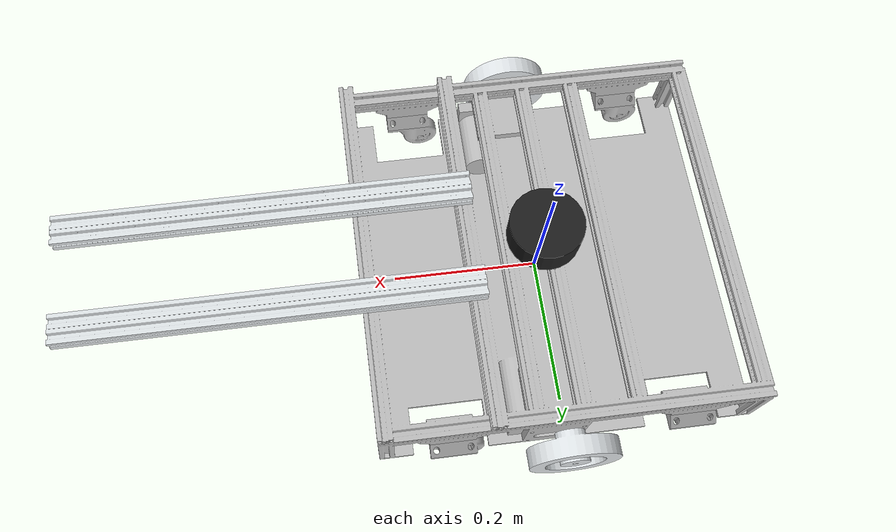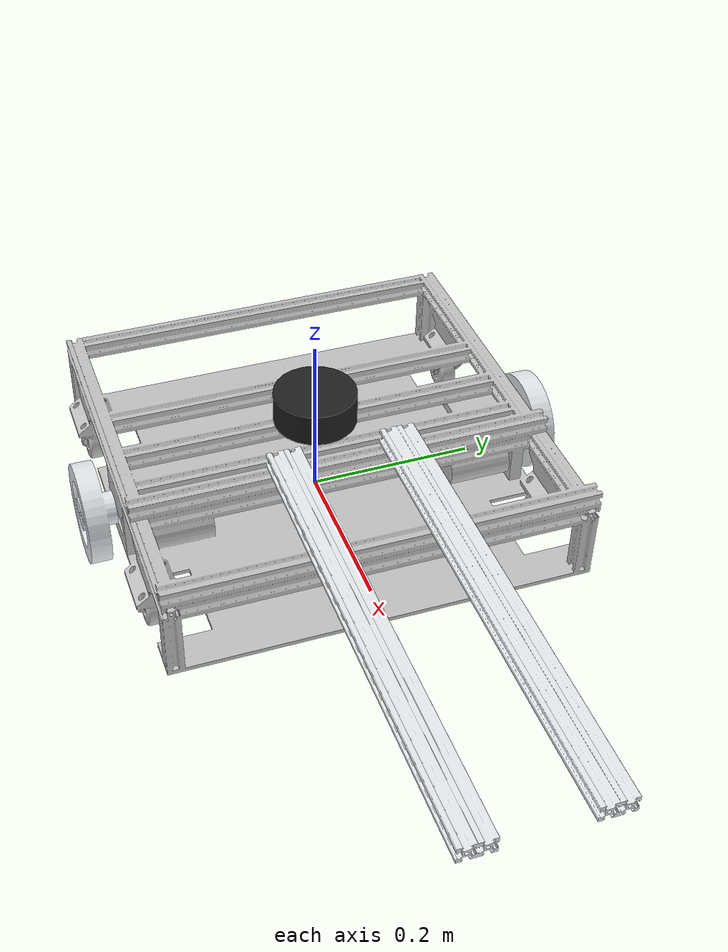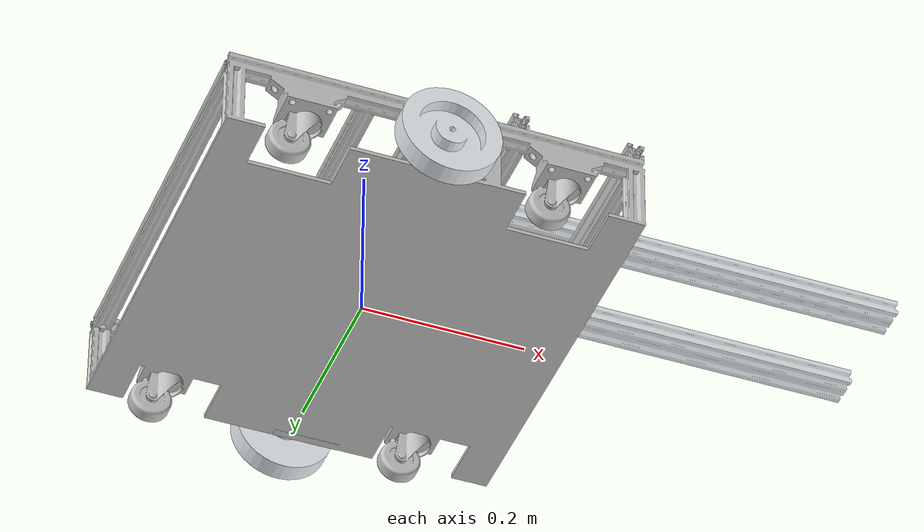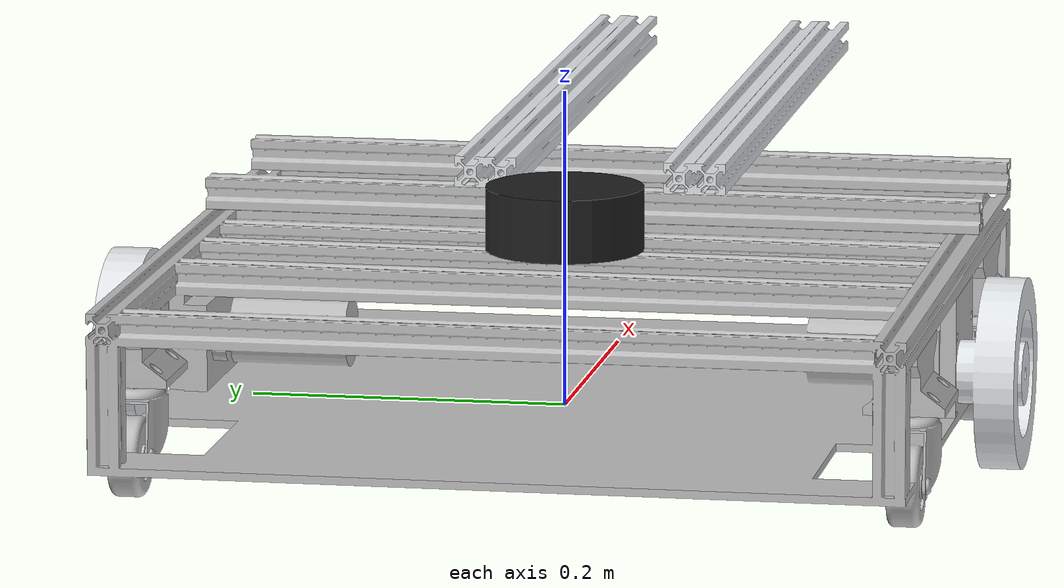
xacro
<?xml version="1.0"?>
<robot xmlns:xacro="http://www.ros.org/wiki/xacro" name="diffdrive" >

  <material name="wheel">
    <color rgba="0 1 0 0.5" /> </material>

  <link name="base_footprint_diff"></link>
  <joint name="base_link_diff_to_base_footprint_diff" type="fixed">
    <origin xyz="0 0 0" rpy="0 0 3.14159265"/>
    <parent link="base_footprint_diff"/>
    <child link="base_link_diff"/>
  </joint>

  <link name="laser_frame_diff">
    <visual>
      <geometry>
        <cylinder radius="0.05" length="0.04"/>
      </geometry>
    </visual>
    <collision>
      <geometry>
        <cylinder radius="0.05" length="0.04"/>
      </geometry>
    </collision>
      <inertial>
      <origin
        xyz="0 0 0"
        rpy="0 0 0" />
      <mass
        value="0.1" />
      <inertia
        ixx="0.01" ixy="0.0" ixz="0.0"
        iyy="0.01" iyz="0.0"
        izz="0.01"/>
    </inertial>
  </link>

  <joint name="laser_joint" type="fixed">
    <origin xyz="0 0 0.12" rpy="0 0 0"/>
    <parent link="base_link_diff"/>
    <child link="laser_frame_diff"/>
  </joint>

  <link
    name="base_link_diff">
    <inertial>
      <origin
        xyz="-0.0244064139228468 -6.45065062421235E-07 0.0569804687199345"
        rpy="0 0 0" />
      <mass
        value="6.66720366185749" />
      <inertia
        ixx="0.01" ixy="0.0" ixz="0.0"
        iyy="0.01" iyz="0.0"
        izz="0.01"/>
    </inertial>
    <visual>
      <origin
        xyz="0 0 0"
        rpy="0 0 0" />
      <geometry>
        <mesh
          filename="file:///$(find my_robot_description)/meshes/diffdrive_meshes/base_link.STL" />
      </geometry>
      <material
        name="">
        <color
          rgba="0.752941176470588 0.752941176470588 0.752941176470588 1" />
      </material>
    </visual>
    <collision>
      <origin
        xyz="0 0 0"
        rpy="0 0 0" />
      <geometry>
        <mesh
          filename="file:///$(find my_robot_description)/meshes/diffdrive_meshes/base_link.STL" />
      </geometry>
     <surface>
        <poissons_ratio>0.347</poissons_ratio>
        <elastic_modulus>8.8e+09</elastic_modulus>
        <ode>
          <soft_cfm>2e+20</soft_cfm>
          <soft_erp>2e+40</soft_erp>
          <kp>1000</kp>
          <kd>1</kd>
          <max_vel>0.01</max_vel>
          <min_depth>1.0</min_depth>
        </ode>
      </surface>
    </collision>
  </link>
  <link
    name="Wheel_left">
    <inertial>
      <origin
        xyz="1.11022302462516E-16 0.0257257525083613 -8.32667268468867E-17"
        rpy="0 0 0" />
      <mass
        value="4.40470068076377" />
      <inertia
        ixx="0.000245137261047142"
        ixy="5.12745004835681E-20"
        ixz="0"
        iyy="0.000452624182450971"
        iyz="-5.57841424911612E-20"
        izz="0.000245137261047142" />
    </inertial>
    <visual>
      <origin
        xyz="0 0 0"
        rpy="0 0 0" />
      <geometry>
        <mesh
          filename="file:///$(find my_robot_description)/meshes/diffdrive_meshes/Wheel_left.STL" />
      </geometry>
      <material
        name="">
        <color
          rgba="0.898039215686275 0.917647058823529 0.929411764705882 1" />
      </material>
    </visual>
    <collision>
      <origin
        xyz="0 0 0"
        rpy="0 0 0" />
      <geometry>
        <mesh
          filename="file:///$(find my_robot_description)/meshes/diffdrive_meshes/Wheel_left.STL" />
      </geometry>
    </collision>
  </link>
  <joint
    name="left_wheel_joint"
    type="continuous">
    <origin
      xyz="-0.000999999999839296 -0.249999999999933 0.0305000000006919"
      rpy="0 0.774914173734372 3.14159265358979" />
    <parent
      link="base_link_diff" />
    <child
      link="Wheel_left" />
    <axis
      xyz="0 1 0" />
  </joint>
  <link
    name="Wheel_right">
    <inertial>
      <origin
        xyz="-1.38777878078145E-16 0.0257257525084522 5.55111512312578E-17"
        rpy="0 0 0" />
      <mass
        value="4.40470068076377" />
      <inertia
        ixx="0.000245137261047143"
        ixy="5.77297627993884E-21"
        ixz="1.35525271560688E-20"
        iyy="0.000452624182450972"
        iyz="1.29229555498199E-20"
        izz="0.000245137261047143" />
    </inertial>
    <visual>
      <origin
        xyz="0 0 0"
        rpy="0 0 0" />
      <geometry>
        <mesh
          filename="file:///$(find my_robot_description)/meshes/diffdrive_meshes/Wheel_right.STL" />
      </geometry>
      <material
        name="">
        <color
          rgba="0.898039215686275 0.917647058823529 0.929411764705882 1" />
      </material>
    </visual>
    <collision>
      <origin
        xyz="0 0 0"
        rpy="0 0 0" />
      <geometry>
        <mesh
          filename="file:///$(find my_robot_description)/meshes/diffdrive_meshes/Wheel_right.STL" />
      </geometry>
    </collision>
  </link>
  <joint
    name="right_wheel_joint"
    type="continuous">
    <origin
      xyz="-0.000999999999862333 0.250000000000088 0.0305000000006919"
      rpy="3.14159265358979 -0.53712555837446 3.14159265358979" />
    <parent
      link="base_link_diff" />
    <child
      link="Wheel_right" />
    <axis
      xyz="0 -1 0" />
  </joint>
  <link
    name="folk_diff_right">
    <inertial>
      <origin
        xyz="0.25796 -0.0675 0.01"
        rpy="0 0 0" />
      <mass
        value="0.052454" />
      <inertia
        ixx="4.2123E-05"
        ixy="1.618E-18"
        ixz="-1.9029E-14"
        iyy="0.013244"
        iyz="2.3396E-16"
        izz="0.013244" />
    </inertial>
    <visual>
      <origin
        xyz="0 0 0"
        rpy="0 0 0" />
      <geometry>
        <mesh
          filename="file:///$(find my_robot_description)/meshes/diffdrive_meshes/folk_right.STL" />
      </geometry>
      <material
        name="">
        <color
          rgba="0.898039215686275 0.917647058823529 0.929411764705882 1" />
      </material>
    </visual>
    <collision>
      <origin
        xyz="0.25796 -0.0675 0.01"
        rpy="0.0 0.0 0.0" />
        <geometry>
            <box size="0.55 0.04 0.02"/>
        </geometry>
     <surface>
        <poissons_ratio>0.347</poissons_ratio>
        <elastic_modulus>8.8e+09</elastic_modulus>
        <ode>
          <soft_cfm>2e+20</soft_cfm>
          <soft_erp>2e+40</soft_erp>
          <kp>1000</kp>
          <kd>1</kd>
          <max_vel>0.01</max_vel>
          <min_depth>1.0</min_depth>
        </ode>
      </surface>
    </collision>
  </link>
  <joint
    name="folk_diff_right_fixed"
    type="fixed">
    <origin
      xyz="-0.107035355338993 0 0.120000000000272"
      rpy="0 0 -3.14159265358979" />
    <parent
      link="base_link_diff" />
    <child
      link="folk_diff_right" />
    <axis
      xyz="0 0 0" />
  </joint>
  <link
    name="folk_diff_left">
    <inertial>
      <origin
        xyz="0.25796 0.0675 0.01"
        rpy="0 0 0" />
      <mass
        value="0.052454" />
      <inertia
        ixx="4.2123E-05"
        ixy="1.618E-18"
        ixz="-1.9029E-14"
        iyy="0.013244"
        iyz="2.3396E-16"
        izz="0.013244" />
    </inertial>
    <visual>
      <origin
        xyz="0 0 0"
        rpy="0 0 0" />
      <geometry>
        <mesh
          filename="file:///$(find my_robot_description)/meshes/diffdrive_meshes/folk_left.STL" />
      </geometry>
      <material
        name="">
        <color
          rgba="0.898039215686275 0.917647058823529 0.929411764705882 1" />
      </material>
    </visual>
    <collision>
      <origin
        xyz="0.25796 0.0675 0.01"
        rpy="0.0 0.0 0.0" />
        <geometry>
            <box size="0.55 0.04 0.02"/>
        </geometry>
     <surface>
        <poissons_ratio>0.347</poissons_ratio>
        <elastic_modulus>8.8e+09</elastic_modulus>
        <ode>
          <soft_cfm>2e+20</soft_cfm>
          <soft_erp>2e+40</soft_erp>
          <kp>1000</kp>
          <kd>1</kd>
          <max_vel>0.01</max_vel>
          <min_depth>1.0</min_depth>
        </ode>
      </surface>
    </collision>
  </link>
  <joint
    name="folk_diff_left_fixed"
    type="fixed">
    <origin
      xyz="-0.107035355338993 0 0.120000000000272"
      rpy="0 0 -3.14159265358979" />
    <parent
      link="base_link_diff" />
    <child
      link="folk_diff_left" />
    <axis
      xyz="0 0 0" />
  </joint>

    <gazebo>
        <plugin name="gazebo_ros_diff_drive" filename="libgazebo_ros_diff_drive.so">
            <!-- Update rate in Hz -->
            <ros>
            <!-- Add a namespace -->
            <namespace>diff</namespace>
             <remapping>/diff/cmd_vel:=/cmd_vel_follower</remapping>
             <remapping>/diff/odom:=/diff/odom</remapping>
            </ros>
            <update_rate>50</update_rate>
            <!-- wheels -->
            <left_joint>left_wheel_joint</left_joint>
            <right_joint>right_wheel_joint</right_joint>
            <!-- kinematics -->
            <wheel_separation>0.5</wheel_separation>
            <wheel_diameter>0.12</wheel_diameter>
            <!-- input -->
            <command_topic>cmd_vel_follower</command_topic>
            <!-- output -->
            <publish_odom>true</publish_odom>
            <!-- Odometry source, 0 for ENCODER, 1 for WORLD, defaults to WORLD -->
            <odometrySource>1</odometrySource>
            <publish_odom_tf>true</publish_odom_tf>
            <publish_wheel_tf>true</publish_wheel_tf>
            <odometry_topic>diffdrive/odom</odometry_topic>
            <odometry_frame>diff_odom</odometry_frame>
            <robot_base_frame>base_footprint_diff</robot_base_frame>
        </plugin>
    </gazebo>

    <gazebo reference="wheel_right">
      <material>Gazebo/Green</material>
    </gazebo>

    <gazebo reference="wheel_left">
      <material>Gazebo/Green</material>
    </gazebo>

    <gazebo reference="base_link_diff">
      <material>Gazebo/White</material>
    </gazebo>

    <gazebo reference="laser_frame_diff">
        <material>Gazebo/Black</material>

        <sensor name="laser" type="ray">
            <pose> 0 0 0 0 0 0 </pose>
            <visualize>false</visualize>
            <update_rate>10</update_rate>
            <ray>
                <scan>
                    <horizontal>
                        <samples>360</samples>
                        <min_angle>-3.14</min_angle>
                        <max_angle>3.14</max_angle>
                    </horizontal>
                </scan>
                <range>
                    <min>0.3</min>
                    <max>12</max>
                </range>
            </ray>
            <plugin name="laser_controller_diff" filename="libgazebo_ros_ray_sensor.so">
                <ros>
                    <argument>~/out:=scan_diff</argument>
                </ros>
                <output_type>sensor_msgs/LaserScan</output_type>
                <frame_name>laser_frame_diff</frame_name>
            </plugin>
        </sensor>
    </gazebo>

</robot>
